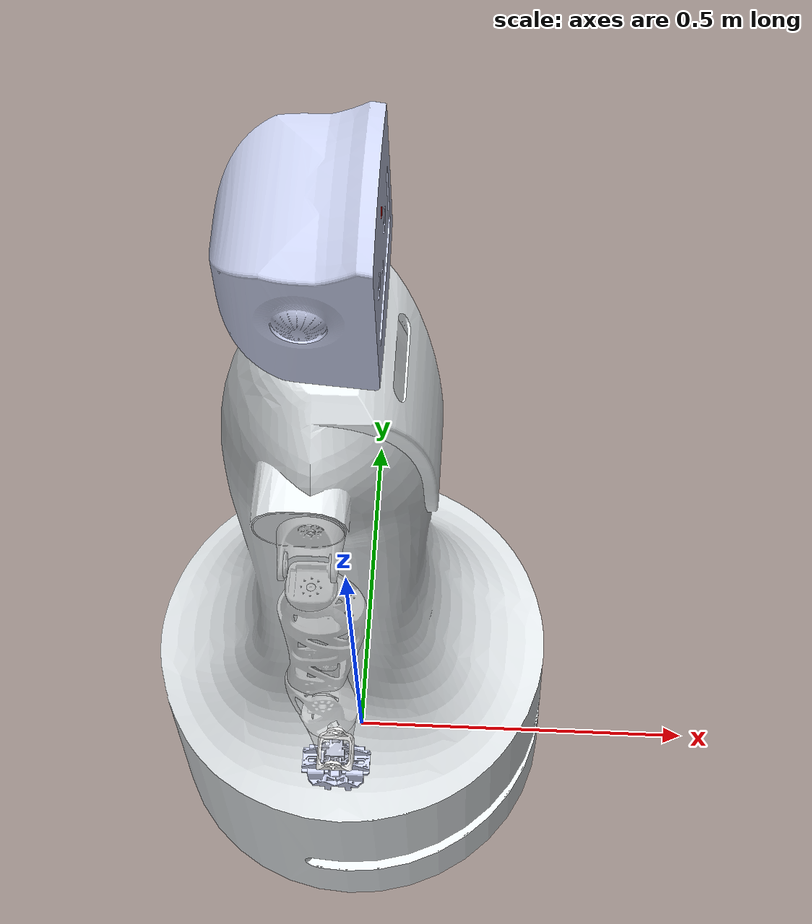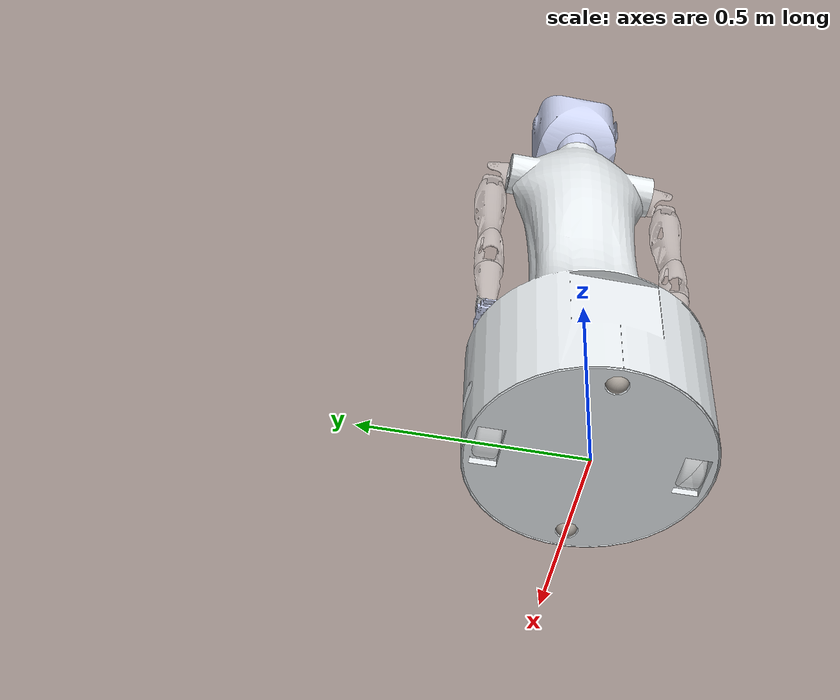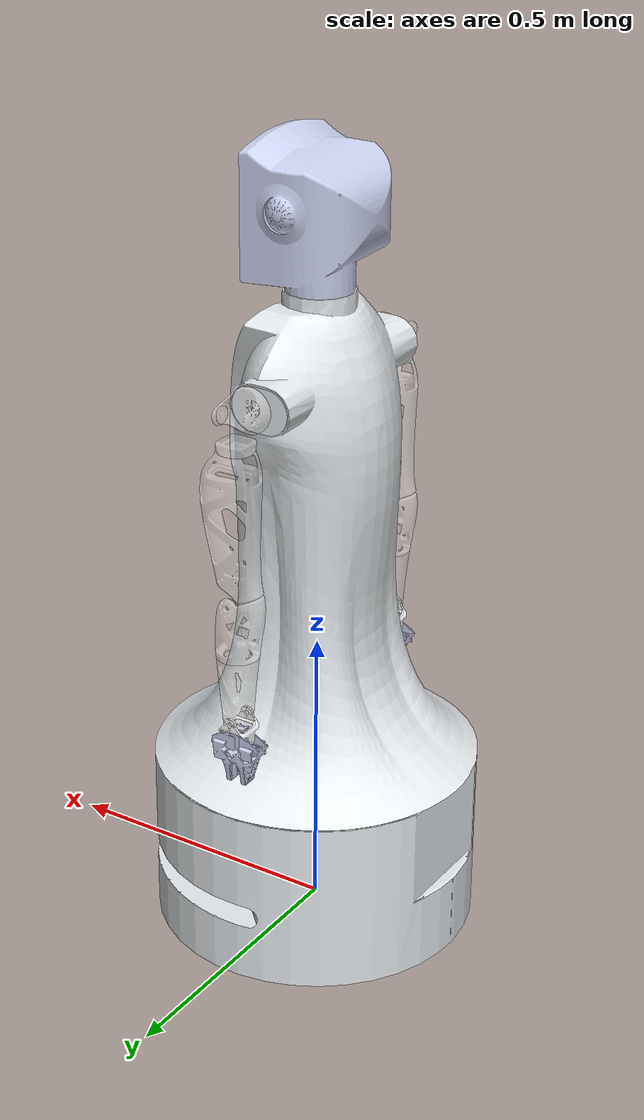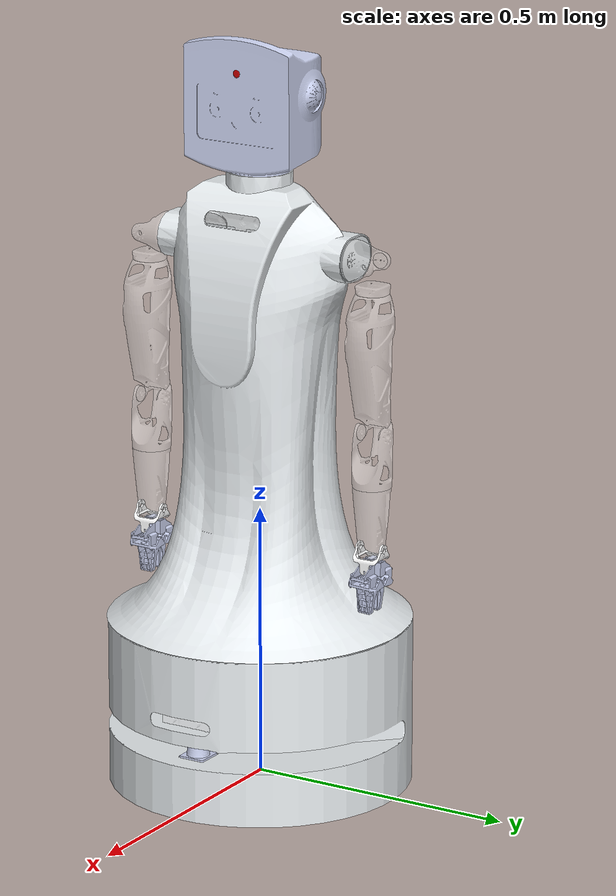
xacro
<?xml version="1.0" encoding="utf-8"?>
<robot
  name="gg">

  <xacro:arg name="left_arm" default="true"/>
  <xacro:arg name="right_arm" default="true"/>
  <!-- pretty important for stability -->
  <xacro:property name="damping" value="0" />
  <xacro:property name="friction" value="0.1" />

  <!-- base_footprint is a fictitious link(frame) that is on the ground right below base_link origin -->

  <link name="base_footprint"/>

  <joint name="base_joint" type="fixed">
    <parent link="base_footprint"/>
    <child link="base_link"/>
    <origin xyz="0.0 0.0 0.010" rpy="0 0 0"/>
  </joint>

  <!-- BASE-LINK -->
  <link
    name="base_link">
    <inertial>
      <origin
        xyz="0.00087670707441645 -0.000134893526176572 0.129521903663046"
        rpy="0 0 0" />
      <mass
        value="12.650328257387" />
      <inertia
        ixx="0.3743375907921"
        ixy="-1.25191226255394E-05"
        ixz="-0.00234555565491785"
        iyy="0.378308274776804"
        iyz="-0.00013948799356669"
        izz="0.443889564061725" />
    </inertial>
    <visual>
      <origin
        xyz="0 0 0"
        rpy="0 0 0" />
      <geometry>
        <mesh
          filename="package://gg_description/meshes/base_link.STL" />
      </geometry>
      <material
        name="">
        <color
          rgba="0.898039215686275 0.917647058823529 0.929411764705882 1" />
      </material>
    </visual>
    <collision>
      <origin
        xyz="0 0 0"
        rpy="0 0 0" />
      <geometry>
        <mesh
          filename="package://gg_description/meshes/base_link.STL" />
      </geometry>
    </collision>
  </link>
  <link
    name="gg_lw_Link">
    <inertial>
      <origin
        xyz="-9.54791801177635E-15 0 0"
        rpy="0 0 0" />
      <mass
        value="0.061890862640772" />
      <inertia
        ixx="8.04435168188267E-05"
        ixy="-7.27153458578974E-36"
        ixz="4.35593139278978E-35"
        iyy="0.000112073295576422"
        iyz="1.00298565734457E-19"
        izz="8.04435168188267E-05" />
    </inertial>
    <visual>
      <origin
        xyz="0 0 0"
        rpy="0 0 0" />
      <geometry>
        <mesh
          filename="package://gg_description/meshes/gg_lw_Link.STL" />
      </geometry>
      <material
        name="">
        <color
          rgba="1 1 1 0.35" />
      </material>
    </visual>
    <collision>
      <origin
        xyz="0 0 0"
        rpy="0 0 0" />
      <geometry>
        <mesh
          filename="package://gg_description/meshes/gg_lw_Link.STL" />
      </geometry>
    </collision>
  </link>
  <joint
    name="gg_lw_joint"
    type="continuous">
    <origin
      xyz="0 0.2225 0.0228"
      rpy="0 0 0" />
    <parent
      link="base_link" />
    <child
      link="gg_lw_Link" />
    <axis
      xyz="0 -1 0" />
    <dynamics
      damping="${damping}"
      friction="${friction}" />
  </joint>
  <link
    name="gg_rw_Link">
    <inertial>
      <origin
        xyz="4.21884749357559E-15 2.22044604925031E-16 -5.55111512312578E-17"
        rpy="0 0 0" />
      <mass
        value="0.0618908626407721" />
      <inertia
        ixx="8.04435168188268E-05"
        ixy="-1.62836134705691E-35"
        ixz="2.85140354730484E-35"
        iyy="0.000112073295576423"
        iyz="1.00298565734457E-19"
        izz="8.04435168188268E-05" />
    </inertial>
    <visual>
      <origin
        xyz="0 0 0"
        rpy="0 0 0" />
      <geometry>
        <mesh
          filename="package://gg_description/meshes/gg_rw_Link.STL" />
      </geometry>
      <material
        name="">
        <color
          rgba="1 1 1 0.35" />
      </material>
    </visual>
    <collision>
      <origin
        xyz="0 0 0"
        rpy="0 0 0" />
      <geometry>
        <mesh
          filename="package://gg_description/meshes/gg_rw_Link.STL" />
      </geometry>
    </collision>
  </link>
  <joint
    name="gg_rw_joint"
    type="continuous">
    <origin
      xyz="0 -0.222500000000033 0.0227999999999976"
      rpy="0 0 0" />
    <parent
      link="base_link" />
    <child
      link="gg_rw_Link" />
    <axis
      xyz="0 -1 0" />
    <dynamics
      damping="${damping}"
      friction="${friction}" />
  </joint>
  <link
    name="gg_fp_Link">
    <inertial>
      <origin
        xyz="0 0 0"
        rpy="0 0 0" />
      <mass
        value="0.105739306655505" />
      <inertia
        ixx="4.07213383852693E-05"
        ixy="0"
        ixz="0"
        iyy="4.07213383852693E-05"
        iyz="0"
        izz="4.07213383852693E-05" />
    </inertial>
    <visual>
      <origin
        xyz="0 0 0"
        rpy="0 0 0" />
      <geometry>
        <mesh
          filename="package://gg_description/meshes/gg_fp_Link.STL" />
      </geometry>
      <material
        name="">
        <color
          rgba="0.647058823529412 0.619607843137255 0.588235294117647 1" />
      </material>
    </visual>
    <collision>
      <origin
        xyz="0 0 0"
        rpy="0 0 0" />
      <geometry>
        <mesh
          filename="package://gg_description/meshes/gg_fp_Link.STL" />
      </geometry>
    </collision>
  </link>
  <joint
    name="gg_fp_joint"
    type="fixed">
    <origin
      xyz="0.2225 0 -0.00320000000000079"
      rpy="0 0 0" />
    <parent
      link="base_link" />
    <child
      link="gg_fp_Link" />
    <axis
      xyz="0 0 0" />
  </joint>
  <link
    name="gg_rp_Link">
    <inertial>
      <origin
        xyz="7.32747196252603E-15 0 0"
        rpy="0 0 0" />
      <mass
        value="0.105739306655505" />
      <inertia
        ixx="4.07213383852693E-05"
        ixy="0"
        ixz="0"
        iyy="4.07213383852693E-05"
        iyz="0"
        izz="4.07213383852693E-05" />
    </inertial>
    <visual>
      <origin
        xyz="0 0 0"
        rpy="0 0 0" />
      <geometry>
        <mesh
          filename="package://gg_description/meshes/gg_rp_Link.STL" />
      </geometry>
      <material
        name="">
        <color
          rgba="0.647058823529412 0.619607843137255 0.588235294117647 1" />
      </material>
    </visual>
    <collision>
      <origin
        xyz="0 0 0"
        rpy="0 0 0" />
      <geometry>
        <mesh
          filename="package://gg_description/meshes/gg_rp_Link.STL" />
      </geometry>
    </collision>
  </link>
  <joint
    name="gg_rp_joint"
    type="fixed">
    <origin
      xyz="-0.226791899422913 0 -0.00319999999999801"
      rpy="0 0 0" />
    <parent
      link="base_link" />
    <child
      link="gg_rp_Link" />
    <axis
      xyz="0 0 0" />
  </joint>
  <link
    name="gg_laser_Link">
    <inertial>
      <origin
        xyz="-0.000163032244300587 -4.41813252649581E-13 -0.0264786679595439"
        rpy="0 0 0" />
      <mass
        value="0.144890835814023" />
      <inertia
        ixx="7.63975905774395E-05"
        ixy="-3.43064130820371E-16"
        ixz="5.49231602354192E-07"
        iyy="7.69075614466373E-05"
        iyz="2.21414439949515E-14"
        izz="5.05011582230962E-05" />
    </inertial>
    <visual>
      <origin
        xyz="0 0 0"
        rpy="0 0 0" />
      <geometry>
        <mesh
          filename="package://gg_description/meshes/gg_laser_Link.STL" />
      </geometry>
      <material
        name="">
        <color
          rgba="0.792156862745098 0.819607843137255 0.933333333333333 1" />
      </material>
    </visual>
    <collision>
      <origin
        xyz="0 0 0"
        rpy="0 0 0" />
      <geometry>
        <mesh
          filename="package://gg_description/meshes/gg_laser_Link.STL" />
      </geometry>
    </collision>
  </link>
  <joint
    name="gg_laser_joint"
    type="fixed">
    <origin
      xyz="0.209118508553583 0 0.101300000000011"
      rpy="0 0 0" />
    <parent
      link="base_link" />
    <child
      link="gg_laser_Link" />
    <axis
      xyz="0 0 0" />
  </joint>
  <link
    name="gg_cam1_Link">
    <inertial>
      <origin
        xyz="-0.00608566765043428 1.11022302462516E-16 -0.025707145079938"
        rpy="0 0 0" />
      <mass
        value="0.049571006742289" />
      <inertia
        ixx="1.54209195929442E-05"
        ixy="4.26459949268379E-20"
        ixz="5.33148997740382E-06"
        iyy="0.000125140284824981"
        iyz="-3.54577656365757E-22"
        izz="0.00011963652209279" />
    </inertial>
    <visual>
      <origin
        xyz="0 0 0"
        rpy="0 0 0" />
      <geometry>
        <mesh
          filename="package://gg_description/meshes/gg_cam1_Link.STL" />
      </geometry>
      <material
        name="">
        <color
          rgba="1 1 1 0.35" />
      </material>
    </visual>
    <collision>
      <origin
        xyz="0 0 0"
        rpy="0 0 0" />
      <geometry>
        <mesh
          filename="package://gg_description/meshes/gg_cam1_Link.STL" />
      </geometry>
    </collision>
  </link>
  <joint
    name="gg_cam1_joint"
    type="fixed">
    <origin
      xyz="0.259496131718395 0.0361385390106069 0.161999999999998"
      rpy="1.5707963267949 0 1.5707963267949" />
    <parent
      link="base_link" />
    <child
      link="gg_cam1_Link" />
    <axis
      xyz="0 0 0" />
  </joint>
  <link
    name="gg_cam2_Link">
    <inertial>
      <origin
        xyz="0.00108786663322763 -0.000201032384153033 -0.0187798361475048"
        rpy="0 0 0" />
      <mass
        value="0.160828442414892" />
      <inertia
        ixx="2.52714835901354E-05"
        ixy="9.2835171138927E-09"
        ixz="5.72311720896949E-07"
        iyy="0.000434489511612229"
        iyz="1.46849874663095E-08"
        izz="0.000427231940538994" />
    </inertial>
    <visual>
      <origin
        xyz="0 0 0"
        rpy="0 0 0" />
      <geometry>
        <mesh
          filename="package://gg_description/meshes/gg_cam2_Link.STL" />
      </geometry>
      <material
        name="">
        <color
          rgba="1 1 1 0.35" />
      </material>
    </visual>
    <collision>
      <origin
        xyz="0 0 0"
        rpy="0 0 0" />
      <geometry>
        <mesh
          filename="package://gg_description/meshes/gg_cam2_Link.STL" />
      </geometry>
    </collision>
  </link>
  <joint
    name="gg_cam2_joint"
    type="fixed">
    <origin
      xyz="0.0805726042816627 -0.00137926838632108 1.03855512604048"
      rpy="1.5707963267949 0 1.5707963267949" />
    <parent
      link="base_link" />
    <child
      link="gg_cam2_Link" />
    <axis
      xyz="0 0 0" />
  </joint>
  <link
    name="gg_head_Link">
    <inertial>
      <origin
        xyz="0.0157083816590583 0.000196683267197684 0.136187769609681"
        rpy="0 0 0" />
      <mass
        value="0.713863501614828" />
      <inertia
        ixx="0.00475971491279427"
        ixy="2.30763354351006E-06"
        ixz="-0.000111949358608975"
        iyy="0.00323474428634301"
        iyz="-3.52269559546706E-07"
        izz="0.00330513482373154" />
    </inertial>
    <visual>
      <origin
        xyz="0 0 0"
        rpy="0 0 0" />
      <geometry>
        <mesh
          filename="package://gg_description/meshes/gg_head_Link.STL" />
      </geometry>
      <material
        name="">
        <color
          rgba="0.792156862745098 0.819607843137255 0.933333333333333 1" />
      </material>
    </visual>
    <collision>
      <origin
        xyz="0 0 0"
        rpy="0 0 0" />
      <geometry>
        <mesh
          filename="package://gg_description/meshes/gg_head_Link.STL" />
      </geometry>
    </collision>
  </link>
  <joint
    name="gg_head_joint"
    type="revolute">
    <origin
      xyz="0 0 1.106"
      rpy="0 0 0" />
    <parent
      link="base_link" />
    <child
      link="gg_head_Link" />
    <axis
      xyz="0 0 -1" />
    <limit
      lower="0.3925"
      upper="-0.3925"
      effort="10.0"
      velocity="0" />
    <dynamics
      damping="${damping}"
      friction="${friction}" />
  </joint>
  <link
    name="gg_cam3_Link">
    <inertial>
      <origin
        xyz="2.07692891773803E-08 -0.00179304047114992 -0.0086330039275947"
        rpy="0 0 0" />
      <mass
        value="0.00288615905957832" />
      <inertia
        ixx="1.49885370606353E-07"
        ixy="4.61954798781525E-14"
        ixz="-4.12754657281223E-14"
        iyy="1.22145355044454E-07"
        iyz="-1.92017046745121E-08"
        izz="1.6704201249208E-07" />
    </inertial>
    <visual>
      <origin
        xyz="0 0 0"
        rpy="0 0 0" />
      <geometry>
        <mesh
          filename="package://gg_description/meshes/gg_cam3_Link.STL" />
      </geometry>
      <material
        name="">
        <color
          rgba="0.752941176470588 0 0 1" />
      </material>
    </visual>
    <collision>
      <origin
        xyz="0 0 0"
        rpy="0 0 0" />
      <geometry>
        <mesh
          filename="package://gg_description/meshes/gg_cam3_Link.STL" />
      </geometry>
    </collision>
  </link>
  <joint
    name="gg_cam3_joint"
    type="fixed">
    <origin
      xyz="0.0770202621633423 0.00144048739006003 0.192546394658118"
      rpy="1.5707963267949 0 1.5707963267949" />
    <parent
      link="gg_head_Link" />
    <child
      link="gg_cam3_Link" />
    <axis
      xyz="0 0 0.999999999997106" />
  </joint>

  <!-- Right Arm Links -->
  <xacro:if value="$(arg right_arm)">
  <link
    name="gg_rsh1_Link">
    <inertial>
      <origin
        xyz="8.18131384860976E-09 1.69344732681154E-08 0.0175032164290977"
        rpy="0 0 0" />
      <mass
        value="0.0381303823374811" />
      <inertia
        ixx="3.59625774466967E-05"
        ixy="8.7817335490912E-10"
        ixz="5.16529323543741E-11"
        iyy="2.30670245307998E-05"
        iyz="-1.42460588813036E-11"
        izz="3.63431445156976E-05" />
    </inertial>
    <visual>
      <origin
        xyz="0 0 0"
        rpy="0 0 0" />
      <geometry>
        <mesh
          filename="package://gg_description/meshes/gg_rsh1_Link.STL" />
      </geometry>
      <material
        name="">
        <color
          rgba="1 1 1 0.35" />
      </material>
    </visual>
    <collision>
      <origin
        xyz="0 0 0"
        rpy="0 0 0" />
      <geometry>
        <mesh
          filename="package://gg_description/meshes/gg_rsh1_Link.STL" />
      </geometry>
    </collision>
  </link>
  <joint
    name="gg_rsh1_joint"
    type="revolute">
    <origin
      xyz="0 -0.18984 0.97435"
      rpy="1.5708 1.5708 0" />
    <parent
      link="base_link" />
    <child
      link="gg_rsh1_Link" />
    <axis
      xyz="0 0 -1" />
    <limit
      lower="-1.5708"
      upper="3.1416"
      effort="10.0"
      velocity="0" />
    <dynamics
      damping="${damping}"
      friction="${friction}" />
  </joint>
  <link
    name="gg_rsh2_Link">
    <inertial>
      <origin
        xyz="0.0419429149642356 -2.68905076272752E-06 3.56683808377944E-06"
        rpy="0 0 0" />
      <mass
        value="0.0248848374342612" />
      <inertia
        ixx="1.30396985610604E-05"
        ixy="-1.11524570643438E-10"
        ixz="2.23505469138815E-10"
        iyy="6.79317648943525E-06"
        iyz="-2.71985954880275E-10"
        izz="7.49518502375986E-06" />
    </inertial>
    <visual>
      <origin
        xyz="0 0 0"
        rpy="0 0 0" />
      <geometry>
        <mesh
          filename="package://gg_description/meshes/gg_rsh2_Link.STL" />
      </geometry>
      <material
        name="">
        <color
          rgba="1 1 1 0.35" />
      </material>
    </visual>
    <collision>
      <origin
        xyz="0 0 0"
        rpy="0 0 0" />
      <geometry>
        <mesh
          filename="package://gg_description/meshes/gg_rsh2_Link.STL" />
      </geometry>
    </collision>
  </link>
  <joint
    name="gg_rsh2_joint"
    type="revolute">
    <origin
      xyz="0 0 0.0425000008690849"
      rpy="-1.5707963267949 0 0" />
    <parent
      link="gg_rsh1_Link" />
    <child
      link="gg_rsh2_Link" />
    <axis
      xyz="0 0 -1" />
    <limit
      lower="-3.1416"
      upper="0"
      effort="10.0"
      velocity="0" />
    <dynamics
      damping="${damping}"
      friction="${friction}" />
  </joint>
  <link
    name="gg_rup_Link">
    <inertial>
      <origin
        xyz="-0.0134580824206121 0.00559925490584134 0.115285754057479"
        rpy="0 0 0" />
      <mass
        value="0.186512140859523" />
      <inertia
        ixx="0.0010968548819787"
        ixy="3.66894254551335E-08"
        ixz="-1.63421546598697E-08"
        iyy="0.00101486771744197"
        iyz="7.6010344481468E-05"
        izz="0.000252652799336481" />
    </inertial>
    <visual>
      <origin
        xyz="0 0 0"
        rpy="0 0 0" />
      <geometry>
        <mesh
          filename="package://gg_description/meshes/gg_rup_Link.STL" />
      </geometry>
      <material
        name="">
        <color
          rgba="1 1 1 0.35" />
      </material>
    </visual>
    <collision>
      <origin
        xyz="0 0 0"
        rpy="0 0 0" />
      <geometry>
        <mesh
          filename="package://gg_description/meshes/gg_rup_Link.STL" />
      </geometry>
    </collision>
  </link>
  <joint
    name="gg_rup_joint"
    type="revolute">
    <origin
      xyz="0.0525020799566041 0.0134600008776389 0"
      rpy="1.5707963267949 0 1.57079632889709" />
    <parent
      link="gg_rsh2_Link" />
    <child
      link="gg_rup_Link" />
    <axis
      xyz="0 0 -1" />
    <limit
      lower="-1.5708"
      upper="1.5708"
      effort="10.0"
      velocity="0" />
    <dynamics
      damping="${damping}"
      friction="${friction}" />
  </joint>
  <link
    name="gg_rfo_Link">
    <inertial>
      <origin
        xyz="-0.00636392874628855 0.0443187792850652 -0.0134108846717047"
        rpy="0 0 0" />
      <mass
        value="0.078708037980908" />
      <inertia
        ixx="0.000142501417323633"
        ixy="-2.85076611405841E-05"
        ixz="-3.54279459871569E-09"
        iyy="8.45415887824212E-05"
        iyz="3.29103853992219E-09"
        izz="0.000143444548402331" />
    </inertial>
    <visual>
      <origin
        xyz="0 0 0"
        rpy="0 0 0" />
      <geometry>
        <mesh
          filename="package://gg_description/meshes/gg_rfo_Link.STL" />
      </geometry>
      <material
        name="">
        <color
          rgba="1 1 1 0.35" />
      </material>
    </visual>
    <collision>
      <origin
        xyz="0 0 0"
        rpy="0 0 0" />
      <geometry>
        <mesh
          filename="package://gg_description/meshes/gg_rfo_Link.STL" />
      </geometry>
    </collision>
  </link>
  <joint
    name="gg_rfo_joint"
    type="revolute">
    <origin
      xyz="0 0 0.257097917271541"
      rpy="1.5707963267949 0 1.5707963267949" />
    <parent
      link="gg_rup_Link" />
    <child
      link="gg_rfo_Link" />
    <axis
      xyz="0 0 -1" />
    <limit
      lower="0"
      upper="2.1817"
      effort="10.0"
      velocity="0" />
    <dynamics
      damping="${damping}"
      friction="${friction}" />
  </joint>
  <link
    name="gg_rwr1_Link">
    <inertial>
      <origin
        xyz="0.000960346520169852 -4.09349725652985E-05 -0.0749380923489797"
        rpy="0 0 0" />
      <mass
        value="0.11389315133205" />
      <inertia
        ixx="0.000119267874430709"
        ixy="7.97246981145315E-09"
        ixz="-1.56203889051018E-06"
        iyy="0.000129201425035623"
        iyz="-1.25420855390573E-07"
        izz="5.4605410730218E-05" />
    </inertial>
    <visual>
      <origin
        xyz="0 0 0"
        rpy="0 0 0" />
      <geometry>
        <mesh
          filename="package://gg_description/meshes/gg_rwr1_Link.STL" />
      </geometry>
      <material
        name="">
        <color
          rgba="1 1 1 0.35" />
      </material>
    </visual>
    <collision>
      <origin
        xyz="0 0 0"
        rpy="0 0 0" />
      <geometry>
        <mesh
          filename="package://gg_description/meshes/gg_rwr1_Link.STL" />
      </geometry>
    </collision>
  </link>
  <joint
    name="gg_rwr1_joint"
    type="revolute">
    <origin
      xyz="0 0.0944000009584798 -0.0134600007672695"
      rpy="1.5707963267949 0 0" />
    <parent
      link="gg_rfo_Link" />
    <child
      link="gg_rwr1_Link" />
    <axis
      xyz="0 0 1" />
    <limit
      lower="-2.618"
      upper="2.618"
      effort="10.0"
      velocity="0" />
    <dynamics
      damping="${damping}"
      friction="${friction}" />
  </joint>
  <link
    name="gg_rwr2_Link">
    <inertial>
      <origin
        xyz="5.27035959831945E-05 0.0149429972956123 -0.000477296526397386"
        rpy="0 0 0" />
      <mass
        value="9.51863081125802E-06" />
      <inertia
        ixx="4.4447503945275E-09"
        ixy="5.55003931203248E-12"
        ixz="5.2946687568552E-14"
        iyy="5.82329186061077E-09"
        iyz="3.73101441494862E-12"
        izz="3.84018286041126E-09" />
    </inertial>
    <visual>
      <origin
        xyz="0 0 0"
        rpy="0 0 0" />
      <geometry>
        <mesh
          filename="package://gg_description/meshes/gg_rwr2_Link.STL" />
      </geometry>
      <material
        name="">
        <color
          rgba="1 1 1 1" />
      </material>
    </visual>
    <collision>
      <origin
        xyz="0 0 0"
        rpy="0 0 0" />
      <geometry>
        <mesh
          filename="package://gg_description/meshes/gg_rwr2_Link.STL" />
      </geometry>
    </collision>
  </link>
  <joint
    name="gg_rwr2_joint"
    type="revolute">
    <origin
      xyz="0 0 -0.11755"
      rpy="-1.5708 0 0" />
    <parent
      link="gg_rwr1_Link" />
    <child
      link="gg_rwr2_Link" />
    <axis
      xyz="0 0 1" />
    <limit
      lower="-1.2217"
      upper="1.2217"
      effort="10.0"
      velocity="0" />
    <dynamics
      damping="${damping}"
      friction="${friction}" />

  </joint>
  <link
    name="gg_rbaseha_Link">
    <inertial>
      <origin
        xyz="-3.46662190466862E-05 -0.00143531076907066 0.00106282905844968"
        rpy="0 0 0" />
      <mass
        value="0.0288403504387064" />
      <inertia
        ixx="4.83725908281321E-06"
        ixy="4.14903498339935E-09"
        ixz="1.68331968166638E-09"
        iyy="6.93893759256986E-06"
        iyz="1.15975580281495E-07"
        izz="5.07061471926491E-06" />
    </inertial>
    <visual>
      <origin
        xyz="0 0 0"
        rpy="0 0 0" />
      <geometry>
        <mesh
          filename="package://gg_description/meshes/gg_rbaseha_Link.STL" />
      </geometry>
      <material
        name="">
        <color
          rgba="0.792156862745098 0.819607843137255 0.933333333333333 1" />
      </material>
    </visual>
    <collision>
      <origin
        xyz="0 0 0"
        rpy="0 0 0" />
      <geometry>
        <mesh
          filename="package://gg_description/meshes/gg_rbaseha_Link.STL" />
      </geometry>
    </collision>
  </link>
  <joint
    name="gg_rbaseha_joint"
    type="fixed">
    <origin
      xyz="0 0.0386368164576881 0"
      rpy="0 0 0" />
    <parent
      link="gg_rwr2_Link" />
    <child
      link="gg_rbaseha_Link" />
    <axis
      xyz="0 0 0" />
  </joint>
  <link
    name="gg_rff_Link">
    <inertial>
      <origin
        xyz="0.00939550629777475 -2.83237858456076E-06 0.0340069487151574"
        rpy="0 0 0" />
      <mass
        value="0.024481616476187" />
      <inertia
        ixx="1.04726803527831E-05"
        ixy="2.82637263258838E-10"
        ixz="-9.62509894843006E-08"
        iyy="5.79799511163099E-06"
        iyz="-6.73202258873545E-11"
        izz="7.03589541366527E-06" />
    </inertial>
    <visual>
      <origin
        xyz="0 0 0"
        rpy="0 0 0" />
      <geometry>
        <mesh
          filename="package://gg_description/meshes/gg_rff_Link.STL" />
      </geometry>
      <material
        name="">
        <color
          rgba="0.792156862745098 0.819607843137255 0.933333333333333 1" />
      </material>
    </visual>
    <collision>
      <origin
        xyz="0 0 0"
        rpy="0 0 0" />
      <geometry>
        <mesh
          filename="package://gg_description/meshes/gg_rff_Link.STL" />
      </geometry>
    </collision>
  </link>
  <joint
    name="gg_rff_joint"
    type="prismatic">
    <origin
      xyz="0.0100020709762965 0.063891720357569 -0.00136312082810863"
      rpy="1.55644753044553 0 0" />
    <parent
      link="gg_rbaseha_Link" />
    <child
      link="gg_rff_Link" />
    <axis
      xyz="1 0 0" />
    <limit
      lower="0"
      upper="0.02"
      effort="10.0"
      velocity="0" />
    <dynamics
      damping="${damping}"
      friction="${friction}" />
  </joint>
  <link
    name="gg_rfr_Link">
    <inertial>
      <origin
        xyz="0.00939553269660132 -0.000563990601135433 0.0340025958410232"
        rpy="0 0 0" />
      <mass
        value="0.0244814918278841" />
      <inertia
        ixx="1.04724702119457E-05"
        ixy="1.66324895414296E-09"
        ixz="-9.62280058819903E-08"
        iyy="5.79805172935487E-06"
        iyz="-1.78314521454913E-08"
        izz="7.03562682326511E-06" />
    </inertial>
    <visual>
      <origin
        xyz="0 0 0"
        rpy="0 0 0" />
      <geometry>
        <mesh
          filename="package://gg_description/meshes/gg_rfr_Link.STL" />
      </geometry>
      <material
        name="">
        <color
          rgba="0.792156862745098 0.819607843137255 0.933333333333333 1" />
      </material>
    </visual>
    <collision>
      <origin
        xyz="0 0 0"
        rpy="0 0 0" />
      <geometry>
        <mesh
          filename="package://gg_description/meshes/gg_rfr_Link.STL" />
      </geometry>
    </collision>
  </link>
  <joint
    name="gg_rfr_joint"
    type="prismatic">
    <origin
      xyz="-0.010005 0.063892 -0.0013631"
      rpy="-1.5708 0 3.1416" />
    <parent
      link="gg_rbaseha_Link" />
    <child
      link="gg_rfr_Link" />
    <axis
      xyz="1 0 0" />
    <limit
      lower="0"
      upper="0.02"
      effort="10.0"
      velocity="0" />
    <dynamics
      damping="${damping}"
      friction="${friction}" />
  </joint>
  </xacro:if>

  <!-- Left Arm Links -->

  <xacro:if value="$(arg left_arm)">
  <link
    name="gg_lsh1_Link">
    <inertial>
      <origin
        xyz="-8.14446443619943E-09 2.71893079162311E-08 -0.0175032164290977"
        rpy="0 0 0" />
      <mass
        value="0.0381303823374847" />
      <inertia
        ixx="3.59625774466957E-05"
        ixy="-8.782004901661E-10"
        ixz="5.1652066670528E-11"
        iyy="2.30670245308033E-05"
        iyz="1.30351481865151E-11"
        izz="3.63431445157019E-05" />
    </inertial>
    <visual>
      <origin
        xyz="0 0 0"
        rpy="0 0 0" />
      <geometry>
        <mesh
          filename="package://gg_description/meshes/gg_lsh1_Link.STL" />
      </geometry>
      <material
        name="">
        <color
          rgba="1 1 1 0.35" />
      </material>
    </visual>
    <collision>
      <origin
        xyz="0 0 0"
        rpy="0 0 0" />
      <geometry>
        <mesh
          filename="package://gg_description/meshes/gg_lsh1_Link.STL" />
      </geometry>
    </collision>
  </link>
  <joint
    name="gg_lsh1_joint"
    type="revolute">
    <origin
      xyz="0 0.189839999999998 0.974352062277305"
      rpy="1.5707963267949 1.5707963267949 0" />
    <parent
      link="base_link" />
    <child
      link="gg_lsh1_Link" />
    <axis
      xyz="-1.65185565703954E-05 0 -0.999999999863569" />
    <limit
      lower="-1.5708"
      upper="3.1416"
      effort="10.0"
      velocity="0" />
    <dynamics
      damping="${damping}"
      friction="${friction}" />
  </joint>
  <link
    name="gg_lsh2_Link">
    <inertial>
      <origin
        xyz="0.0403929904725797 1.40690178659364E-05 3.54217267184431E-06"
        rpy="0 0 0" />
      <mass
        value="0.0248848009097077" />
      <inertia
        ixx="1.30396546158409E-05"
        ixy="-1.10434393732099E-10"
        ixz="2.23998906533502E-10"
        iyy="6.79313876074864E-06"
        iyz="-2.47303233758556E-10"
        izz="7.49518433835214E-06" />
    </inertial>
    <visual>
      <origin
        xyz="0 0 0"
        rpy="0 0 0" />
      <geometry>
        <mesh
          filename="package://gg_description/meshes/gg_lsh2_Link.STL" />
      </geometry>
      <material
        name="">
        <color
          rgba="1 1 1 0.35" />
      </material>
    </visual>
    <collision>
      <origin
        xyz="0 0 0"
        rpy="0 0 0" />
      <geometry>
        <mesh
          filename="package://gg_description/meshes/gg_lsh2_Link.STL" />
      </geometry>
    </collision>
  </link>
  <joint
    name="gg_lsh2_joint"
    type="revolute">
    <origin
      xyz="0.00154990979692626 0 -0.0424832768576723"
      rpy="-1.5707963267949 0 0" />
    <parent
      link="gg_lsh1_Link" />
    <child
      link="gg_lsh2_Link" />
    <axis
      xyz="0 0 -1" />
    <limit
      lower="-3.1416"
      upper="0"
      effort="10.0"
      velocity="0" />
    <dynamics
      damping="${damping}"
      friction="${friction}" />
  </joint>
  <link
    name="gg_lup_Link">
    <inertial>
      <origin
        xyz="-1.91755366957258E-06 -0.00559925229167701 0.113588534330144"
        rpy="0 0 0" />
      <mass
        value="0.186512208420852" />
      <inertia
        ixx="0.00109685612254701"
        ixy="3.66596457877962E-08"
        ixz="1.64266736344448E-08"
        iyy="0.0010148681282286"
        iyz="-7.60102013124441E-05"
        izz="0.000252653648190317" />
    </inertial>
    <visual>
      <origin
        xyz="0 0 0"
        rpy="0 0 0" />
      <geometry>
        <mesh
          filename="package://gg_description/meshes/gg_lup_Link.STL" />
      </geometry>
      <material
        name="">
        <color
          rgba="1 1 1 0.35" />
      </material>
    </visual>
    <collision>
      <origin
        xyz="0 0 0"
        rpy="0 0 0" />
      <geometry>
        <mesh
          filename="package://gg_description/meshes/gg_lup_Link.STL" />
      </geometry>
    </collision>
  </link>
  <joint
    name="gg_lup_joint"
    type="revolute">
    <origin
      xyz="0.0526493868628737 1.67223669861882E-05 0"
      rpy="-1.5707963267949 0 -1.5707963267949" />
    <parent
      link="gg_lsh2_Link" />
    <child
      link="gg_lup_Link" />
    <axis
      xyz="0 0 1" />
    <limit
      lower="-1.5708"
      upper="1.5708"
      effort="10.0"
      velocity="0" />
    <dynamics
      damping="${damping}"
      friction="${friction}" />
  </joint>
  <link
    name="gg_lfo_Link">
    <inertial>
      <origin
        xyz="-0.00636412444299728 -0.0443193301436605 -4.90513516736291E-05"
        rpy="0 0 0" />
      <mass
        value="0.0787080680556365" />
      <inertia
        ixx="0.000142500626377126"
        ixy="2.85074890657573E-05"
        ixz="3.58942783714796E-09"
        iyy="8.45403839853453E-05"
        iyz="3.31320535737995E-09"
        izz="0.000143443932964028" />
    </inertial>
    <visual>
      <origin
        xyz="0 0 0"
        rpy="0 0 0" />
      <geometry>
        <mesh
          filename="package://gg_description/meshes/gg_lfo_Link.STL" />
      </geometry>
      <material
        name="">
        <color
          rgba="1 1 1 0.35" />
      </material>
    </visual>
    <collision>
      <origin
        xyz="0 0 0"
        rpy="0 0 0" />
      <geometry>
        <mesh
          filename="package://gg_description/meshes/gg_lfo_Link.STL" />
      </geometry>
    </collision>
  </link>
  <joint
    name="gg_lfo_joint"
    type="revolute">
    <origin
      xyz="0 0 0.255399998394072"
      rpy="-1.5707963267949 0 -1.5707963267949" />
    <parent
      link="gg_lup_Link" />
    <child
      link="gg_lfo_Link" />
    <axis
      xyz="0 0 1" />
    <limit
      lower="0"
      upper="2.1817"
      effort="10.0"
      velocity="0" />
    <dynamics
      damping="${damping}"
      friction="${friction}" />
  </joint>
  <link
    name="gg_lwr1_Link">
    <inertial>
      <origin
        xyz="0.000960367443756494 4.09327990248676E-05 0.0749387972708226"
        rpy="0 0 0" />
      <mass
        value="0.113893162625388" />
      <inertia
        ixx="0.000119267877078213"
        ixy="-7.97363485965435E-09"
        ixz="1.56203894566025E-06"
        iyy="0.000129201426467251"
        iyz="-1.25420722931249E-07"
        izz="5.46054135122238E-05" />
    </inertial>
    <visual>
      <origin
        xyz="0 0 0"
        rpy="0 0 0" />
      <geometry>
        <mesh
          filename="package://gg_description/meshes/gg_lwr1_Link.STL" />
      </geometry>
      <material
        name="">
        <color
          rgba="1 1 1 0.35" />
      </material>
    </visual>
    <collision>
      <origin
        xyz="0 0 0"
        rpy="0 0 0" />
      <geometry>
        <mesh
          filename="package://gg_description/meshes/gg_lwr1_Link.STL" />
      </geometry>
    </collision>
  </link>
  <joint
    name="gg_lwr1_joint"
    type="revolute">
    <origin
      xyz="0 -0.0944000013387671 0"
      rpy="1.5707963267949 0 0" />
    <parent
      link="gg_lfo_Link" />
    <child
      link="gg_lwr1_Link" />
    <axis
      xyz="0 0 1" />
    <limit
      lower="-2.618"
      upper="2.618"
      effort="10.0"
      velocity="0" />
    <dynamics
      damping="${damping}"
      friction="${friction}" />
  </joint>
  <link
    name="gg_lwr2_Link">
    <inertial>
      <origin
        xyz="5.25547150048711E-05 -0.0149437167109086 0.000477116749709544"
        rpy="0 0 0" />
      <mass
        value="9.51875564799266E-06" />
      <inertia
        ixx="4.44477237002039E-09"
        ixy="-5.55123140554893E-12"
        ixz="-7.47720553782032E-14"
        iyy="5.82333866745832E-09"
        iyz="3.73108068466697E-12"
        izz="3.84020974400786E-09" />
    </inertial>
    <visual>
      <origin
        xyz="0 0 0"
        rpy="0 0 0" />
      <geometry>
        <mesh
          filename="package://gg_description/meshes/gg_lwr2_Link.STL" />
      </geometry>
      <material
        name="">
        <color
          rgba="1 1 1 1" />
      </material>
    </visual>
    <collision>
      <origin
        xyz="0 0 0"
        rpy="0 0 0" />
      <geometry>
        <mesh
          filename="package://gg_description/meshes/gg_lwr2_Link.STL" />
      </geometry>
    </collision>
  </link>
  <joint
    name="gg_lwr2_joint"
    type="revolute">
    <origin
      xyz="0 0 0.117549998791541"
      rpy="-1.5707963267949 0 0" />
    <parent
      link="gg_lwr1_Link" />
    <child
      link="gg_lwr2_Link" />
    <axis
      xyz="0 0 1" />
    <limit
      lower="-1.2217"
      upper="1.2217"
      effort="10.0"
      velocity="0" />
    <dynamics
      damping="${damping}"
      friction="${friction}" />
  </joint>
  <link
    name="gg_lbaseha_Link">
    <inertial>
      <origin
        xyz="-3.46443770958826E-05 0.00138606765821769 -0.00106936975719524"
        rpy="0 0 0" />
      <mass
        value="0.0288403474642093" />
      <inertia
        ixx="4.83725868223061E-06"
        ixy="-4.20069787582921E-09"
        ixz="-1.54992521668011E-09"
        iyy="6.94443668469871E-06"
        iyz="5.60835825737299E-08"
        izz="5.06511522825688E-06" />
    </inertial>
    <visual>
      <origin
        xyz="0 0 0"
        rpy="0 0 0" />
      <geometry>
        <mesh
          filename="package://gg_description/meshes/gg_lbaseha_Link.STL" />
      </geometry>
      <material
        name="">
        <color
          rgba="0.792156862745098 0.819607843137255 0.933333333333333 1" />
      </material>
    </visual>
    <collision>
      <origin
        xyz="0 0 0"
        rpy="0 0 0" />
      <geometry>
        <mesh
          filename="package://gg_description/meshes/gg_lbaseha_Link.STL" />
      </geometry>
    </collision>
  </link>
  <joint
    name="gg_lbaseha_joint"
    type="fixed">
    <origin
      xyz="0 -0.0386368164576881 0"
      rpy="0 0 0" />
    <parent
      link="gg_lwr2_Link" />
    <child
      link="gg_lbaseha_Link" />
    <axis
      xyz="0 0 0" />
  </joint>
  <link
    name="gg_lff_Link">
    <inertial>
      <origin
        xyz="0.0093955080299607 0.00157113871445155 0.0339706389707615"
        rpy="0 0 0" />
      <mass
        value="0.0244816183889169" />
      <inertia
        ixx="1.04726784863631E-05"
        ixy="-4.17226742466384E-09"
        ixz="-9.61612586827225E-08"
        iyy="5.80064271716413E-06"
        iyz="5.71683263537019E-08"
        izz="7.03324782854151E-06" />
    </inertial>
    <visual>
      <origin
        xyz="0 0 0"
        rpy="0 0 0" />
      <geometry>
        <mesh
          filename="package://gg_description/meshes/gg_lff_Link.STL" />
      </geometry>
      <material
        name="">
        <color
          rgba="0.792156862745098 0.819607843137255 0.933333333333333 1" />
      </material>
    </visual>
    <collision>
      <origin
        xyz="0 0 0"
        rpy="0 0 0" />
      <geometry>
        <mesh
          filename="package://gg_description/meshes/gg_lff_Link.STL" />
      </geometry>
    </collision>
  </link>
  <joint
    name="gg_lff_joint"
    type="prismatic">
    <origin
      xyz="0.0100011053706025 -0.0638301184763955 0.00344229451811068"
      rpy="-1.5707963267949 0 0" />
    <parent
      link="gg_lbaseha_Link" />
    <child
      link="gg_lff_Link" />
    <axis
      xyz="1 0 0" />
    <limit
      lower="0"
      upper="0.02"
      effort="10.0"
      velocity="0" />
    <dynamics
      damping="${damping}"
      friction="${friction}" />
  </joint>
  <link
    name="gg_lfr_Link">
    <inertial>
      <origin
        xyz="0.0093955347572251 -0.00157677606487289 0.0339700251461681"
        rpy="0 0 0" />
      <mass
        value="0.0244814767725134" />
      <inertia
        ixx="1.04724632417437E-05"
        ixy="4.73622835691414E-09"
        ixz="-9.61256707192296E-08"
        iyy="5.80045400567467E-06"
        iyz="-5.73117167567454E-08"
        izz="7.03321890484212E-06" />
    </inertial>
    <visual>
      <origin
        xyz="0 0 0"
        rpy="0 0 0" />
      <geometry>
        <mesh
          filename="package://gg_description/meshes/gg_lfr_Link.STL" />
      </geometry>
      <material
        name="">
        <color
          rgba="0.792156862745098 0.819607843137255 0.933333333333333 1" />
      </material>
    </visual>
    <collision>
      <origin
        xyz="0 0 0"
        rpy="0 0 0" />
      <geometry>
        <mesh
          filename="package://gg_description/meshes/gg_lfr_Link.STL" />
      </geometry>
    </collision>
  </link>
  <joint
    name="gg_lfr_joint"
    type="prismatic">
    <origin
      xyz="-0.00999824554758277 -0.0638329160811288 0.00336911913045193"
      rpy="1.5707963267949 0 3.14159265358979" />
    <parent
      link="gg_lbaseha_Link" />
    <child
      link="gg_lfr_Link" />
    <axis
      xyz="1 0 0" />
    <limit
      lower="0"
      upper="0.02"
      effort="10.0"
      velocity="0" />
    <dynamics
      damping="${damping}"
      friction="${friction}" />
  </joint>
  </xacro:if>

</robot>
